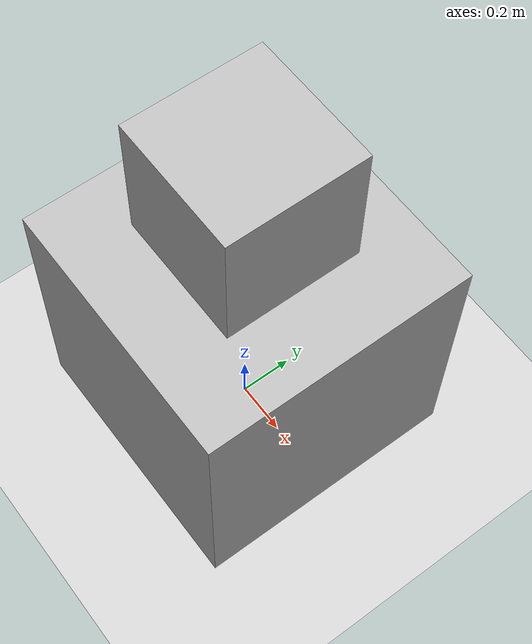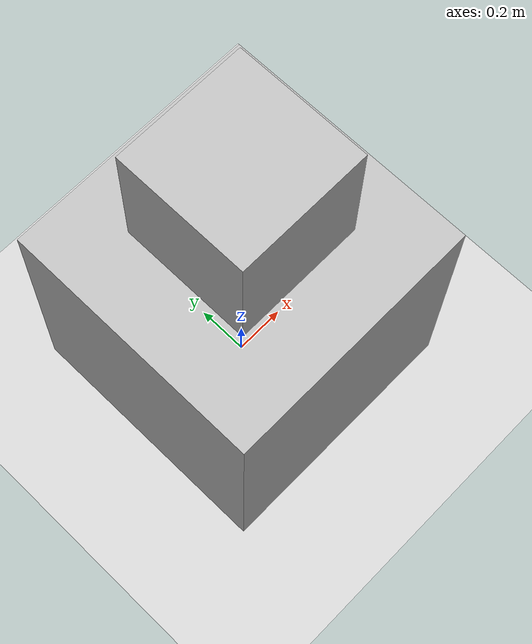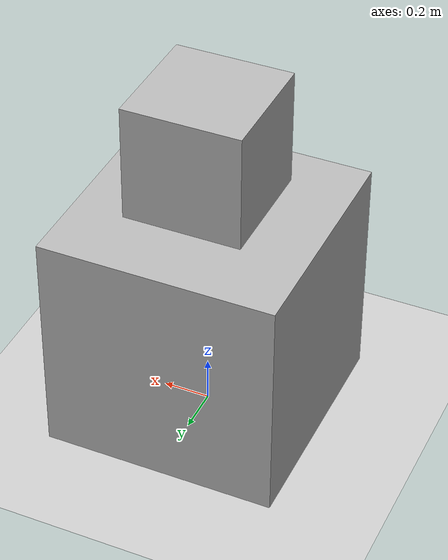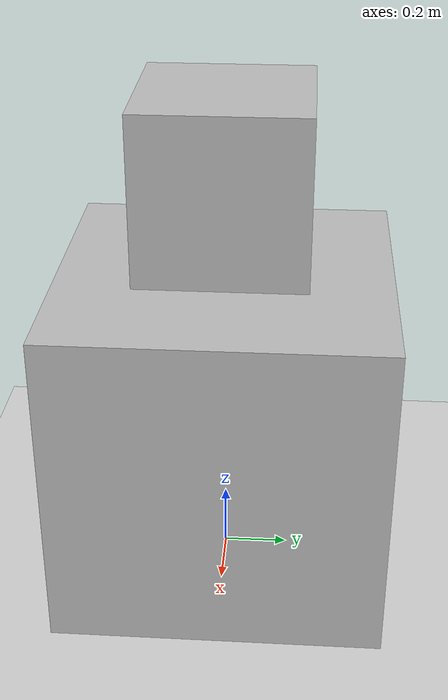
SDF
<?xml version="1.0" ?>
<sdf version="1.4">
  <world name="default">
    <scene>
      <ambient>0.0 0.0 0.0 1</ambient>
      <background>1 1 1 1</background>
      <shadows>true</shadows>
    </scene>
    <physics type="ode">
      <gravity>0 0 -9.8</gravity>
      <ode>
        <solver>
          <type>quick</type>
          <iters>100</iters>
          <sor>1.3</sor>
        </solver>
      </ode>
      <real_time_update_rate>100</real_time_update_rate>
      <max_step_size>0.01</max_step_size>
    </physics>
    <!-- Ground Plane -->
    <include><uri>model://ground_plane</uri></include>
    <model name="box">
      <link name="base_link">
        <pose>0 0 0.5 0 0 0</pose>
        <inertial>
          <inertia>
            <ixx>1</ixx>
            <ixy>0</ixy>
            <ixz>0</ixz>
            <iyy>1</iyy>
            <iyz>0</iyz>
            <izz>1</izz>
          </inertia>
          <mass>1.0</mass>
        </inertial>
        <collision name="collision">
          <geometry>
            <box>
              <size>1 1 1</size>
            </box>
          </geometry>
        </collision>
        <visual name="visual">
          <geometry>
            <box>
              <size>1 1 1</size>
            </box>
          </geometry>
        </visual>
      </link>
      <link name="top_link">
        <pose>0 0 1.3 0 0 0</pose>
        <inertial>
          <inertia>
            <ixx>1</ixx>
            <ixy>0</ixy>
            <ixz>0</ixz>
            <iyy>1</iyy>
            <iyz>0</iyz>
            <izz>1</izz>
          </inertia>
          <mass>1.0</mass>
        </inertial>
        <collision name="collision">
          <geometry>
            <box>
              <size>.5 .5 .5</size>
            </box>
          </geometry>
        </collision>
        <visual name="visual">
          <geometry>
            <box>
              <size>.5 .5 .5</size>
            </box>
          </geometry>
        </visual>
      </link>
      <joint name="my_joint" type="prismatic">
        <parent>base_link</parent>
        <child>top_link</child>
        <axis>
          <xyz>0 0 1</xyz>
        </axis>
      </joint>
      <plugin name="animate_joints" filename="libanimate_joints.so" />
    </model>
    <light type="directional" name="sun">
      <pose>0 0 10 0 0 0</pose>
      <diffuse>1.0 1.0 1.0 1</diffuse>
      <specular>.1 .1 .1 1</specular>
      <attenuation>
        <range>10</range>
        <linear>0.01</linear>
        <constant>0.8</constant>
        <quadratic>0.0</quadratic>
      </attenuation>
      <direction>0 .2 -1.0</direction>
      <cast_shadows>true</cast_shadows>
    </light>
  </world>
</sdf>
